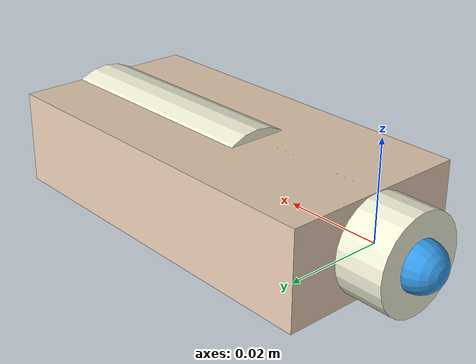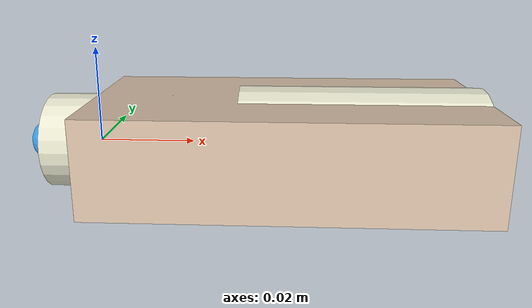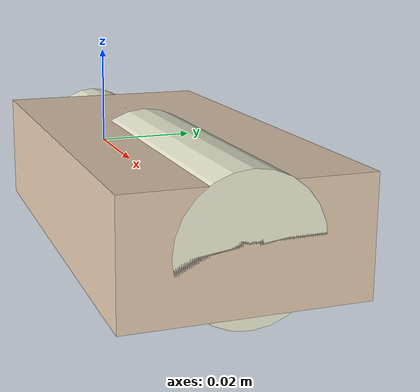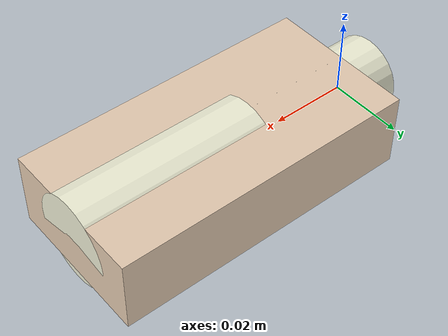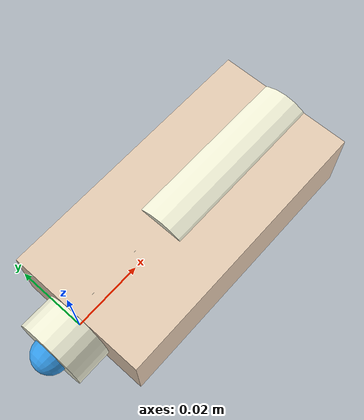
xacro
<?xml version="1.0"?>
<robot xmlns:xacro="http://www.ros.org/wiki/xacro" name="prosthetic_finger">

  <!-- ============ PARAMETERS (easily tunable) ============ -->
  <xacro:property name="palm_length" value="0.08"/>
  <xacro:property name="palm_width"  value="0.04"/>
  <xacro:property name="palm_height" value="0.02"/>

  <xacro:property name="proximal_length" value="0.05"/>
  <xacro:property name="proximal_radius" value="0.012"/>

  <xacro:property name="distal_length" value="0.04"/>
  <xacro:property name="distal_radius" value="0.010"/>

  <xacro:property name="tip_radius" value="0.005"/>

  <!-- ============ COLORS ============ -->
  <material name="skin">
    <color rgba="0.9 0.8 0.7 1.0"/>
  </material>
  <material name="bone">
    <color rgba="0.95 0.95 0.85 1.0"/>
  </material>
  <material name="tip_sensor">
    <color rgba="0.2 0.6 0.9 1.0"/>
  </material>

  <!-- ============ BASE LINK (palm attachment) ============ -->
  <link name="base_link"/>

  <!-- ============ PALM LINK ============ -->
  <link name="palm">
    <visual>
      <geometry>
        <box size="${palm_length} ${palm_width} ${palm_height}"/>
      </geometry>
      <origin xyz="${palm_length/2} 0 0" rpy="0 0 0"/>
      <material name="skin"/>
    </visual>
    <collision>
      <geometry>
        <box size="${palm_length} ${palm_width} ${palm_height}"/>
      </geometry>
      <origin xyz="${palm_length/2} 0 0" rpy="0 0 0"/>
    </collision>
    <inertial>
      <mass value="0.1"/>
      <inertia ixx="0.0001" iyy="0.0001" izz="0.0001" ixy="0" ixz="0" iyz="0"/>
    </inertial>
  </link>

  <joint name="base_to_palm" type="fixed">
    <parent link="base_link"/>
    <child link="palm"/>
    <origin xyz="0 0 0" rpy="0 0 0"/>
  </joint>

  <!-- ============ PROXIMAL PHALANX ============ -->
  <link name="proximal_phalanx">
    <visual>
      <geometry>
        <cylinder length="${proximal_length}" radius="${proximal_radius}"/>
      </geometry>
      <origin xyz="0 0 ${-proximal_length/2}" rpy="0 0 0"/>
      <material name="bone"/>
    </visual>
    <collision>
      <geometry>
        <cylinder length="${proximal_length}" radius="${proximal_radius}"/>
      </geometry>
      <origin xyz="0 0 ${-proximal_length/2}" rpy="0 0 0"/>
    </collision>
    <inertial>
      <mass value="0.05"/>
      <inertia ixx="0.00001" iyy="0.00001" izz="0.000005" ixy="0" ixz="0" iyz="0"/>
    </inertial>
  </link>

  <!-- MCP Joint (Metacarpophalangeal) - rotates around Y axis (flexion) -->
  <joint name="mcp_joint" type="revolute">
    <parent link="palm"/>
    <child link="proximal_phalanx"/>
    <origin xyz="${palm_length} 0 0" rpy="0 1.5708 0"/>
    <axis xyz="0 0 1"/>
    <limit lower="-0.2" upper="1.8" effort="10.0" velocity="2.0"/>
  </joint>

  <!-- ============ DISTAL PHALANX ============ -->
  <link name="distal_phalanx">
    <visual>
      <geometry>
        <cylinder length="${distal_length}" radius="${distal_radius}"/>
      </geometry>
      <origin xyz="0 0 ${-distal_length/2}" rpy="0 0 0"/>
      <material name="bone"/>
    </visual>
    <collision>
      <geometry>
        <cylinder length="${distal_length}" radius="${distal_radius}"/>
      </geometry>
      <origin xyz="0 0 ${-distal_length/2}" rpy="0 0 0"/>
    </collision>
    <inertial>
      <mass value="0.03"/>
      <inertia ixx="0.000005" iyy="0.000005" izz="0.000002" ixy="0" ixz="0" iyz="0"/>
    </inertial>
  </link>

  <!-- PIP Joint (Proximal Interphalangeal) -->
  <joint name="pip_joint" type="revolute">
    <parent link="proximal_phalanx"/>
    <child link="distal_phalanx"/>
    <origin xyz="0 0 ${-proximal_length}" rpy="0 0 0"/>
    <axis xyz="0 0 1"/>
    <limit lower="0.0" upper="2.0" effort="8.0" velocity="2.0"/>
  </joint>

  <!-- ============ FINGERTIP (with tactile sensor pad) ============ -->
  <link name="fingertip">
    <visual>
      <geometry>
        <sphere radius="${tip_radius}"/>
      </geometry>
      <material name="tip_sensor"/>
    </visual>
    <collision>
      <geometry>
        <sphere radius="${tip_radius}"/>
      </geometry>
    </collision>
    <inertial>
      <mass value="0.01"/>
      <inertia ixx="0.0000001" iyy="0.0000001" izz="0.0000001" ixy="0" ixz="0" iyz="0"/>
    </inertial>
  </link>

  <joint name="distal_to_tip" type="fixed">
    <parent link="distal_phalanx"/>
    <child link="fingertip"/>
    <origin xyz="0 0 ${-distal_length}" rpy="0 0 0"/>
  </joint>

</robot>
